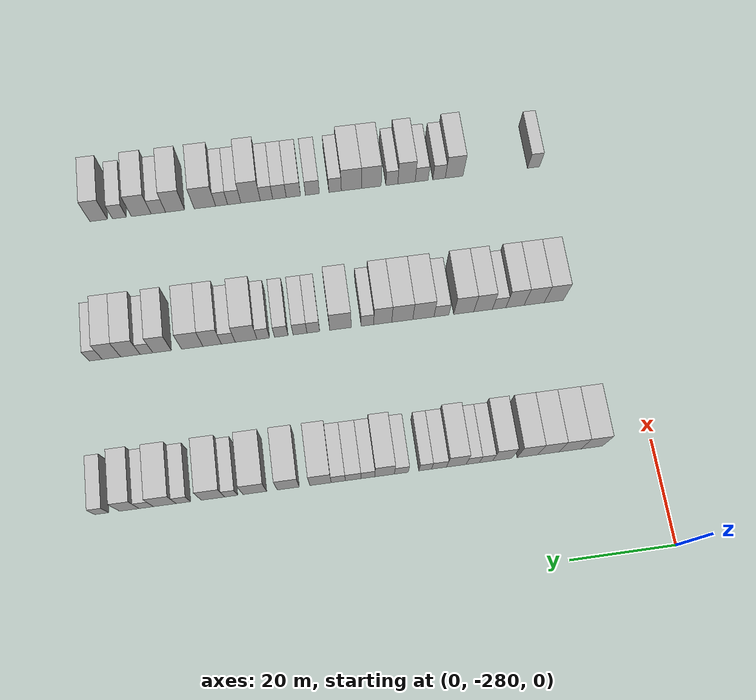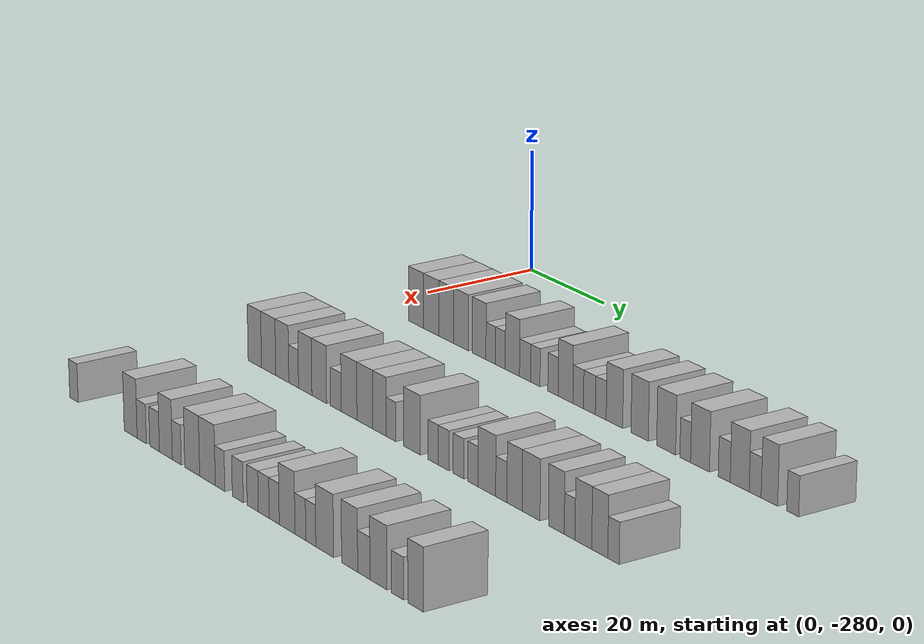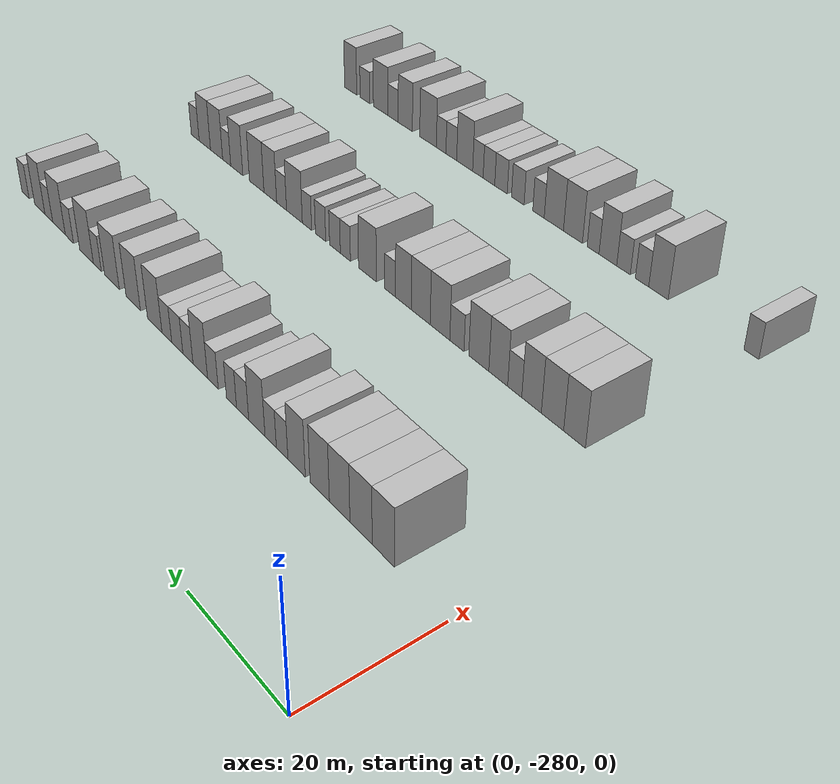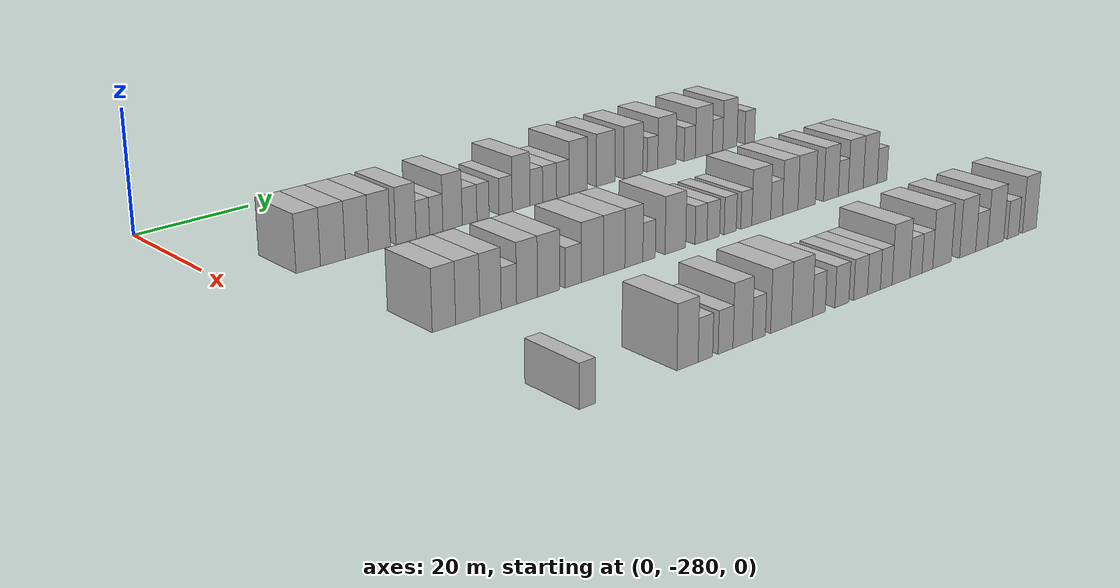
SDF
<sdf version="1.6">
 <world name="default">
  <model name="building_49">
   <static>1</static>
   <pose>25.0000 -268.4264 0 0.000000 0.000000 0.000000</pose>
   <link name="link">
    <pose>0 0 4.50 0 0 0</pose>
    <collision name="collision"><geometry><box><size>10.0000 4.1575 9.0000</size></box></geometry></collision>
    <visual name="visual">
     <cast_shadows>0</cast_shadows>
     <geometry><box><size>10.0000 4.1575 9.0000</size></box></geometry>
     <material>
      <script>
       <uri>model://HANNAS_wall/materials/scripts</uri>
       <uri>model://HANNAS_wall/materials/textures</uri>
       <name>vrc/HANNAS_wall</name>
      </script>
     </material>
    </visual>
   </link>
  </model>
  <model name="building_50">
   <static>1</static>
   <pose>25.0000 -264.1976 0 0.000000 0.000000 0.000000</pose>
   <link name="link">
    <pose>0 0 4.50 0 0 0</pose>
    <collision name="collision"><geometry><box><size>10.0000 4.3001 9.0000</size></box></geometry></collision>
    <visual name="visual">
     <cast_shadows>0</cast_shadows>
     <geometry><box><size>10.0000 4.3001 9.0000</size></box></geometry>
     <material>
      <script>
       <uri>model://HANNAS_wall/materials/scripts</uri>
       <uri>model://HANNAS_wall/materials/textures</uri>
       <name>vrc/HANNAS_wall</name>
      </script>
     </material>
    </visual>
   </link>
  </model>
  <model name="building_51">
   <static>1</static>
   <pose>25.0000 -259.9924 0 0.000000 0.000000 0.000000</pose>
   <link name="link">
    <pose>0 0 4.50 0 0 0</pose>
    <collision name="collision"><geometry><box><size>10.0000 4.1102 9.0000</size></box></geometry></collision>
    <visual name="visual">
     <cast_shadows>0</cast_shadows>
     <geometry><box><size>10.0000 4.1102 9.0000</size></box></geometry>
     <material>
      <script>
       <uri>model://HANNAS_wall/materials/scripts</uri>
       <uri>model://HANNAS_wall/materials/textures</uri>
       <name>vrc/HANNAS_wall</name>
      </script>
     </material>
    </visual>
   </link>
  </model>
  <model name="building_52">
   <static>1</static>
   <pose>25.0000 -255.9386 0 0.000000 0.000000 0.000000</pose>
   <link name="link">
    <pose>0 0 4.50 0 0 0</pose>
    <collision name="collision"><geometry><box><size>10.0000 3.9975 9.0000</size></box></geometry></collision>
    <visual name="visual">
     <cast_shadows>0</cast_shadows>
     <geometry><box><size>10.0000 3.9975 9.0000</size></box></geometry>
     <material>
      <script>
       <uri>model://HANNAS_wall/materials/scripts</uri>
       <uri>model://HANNAS_wall/materials/textures</uri>
       <name>vrc/HANNAS_wall</name>
      </script>
     </material>
    </visual>
   </link>
  </model>
  <model name="building_53">
   <static>1</static>
   <pose>25.0000 -251.0679 0 0.000000 0.000000 0.000000</pose>
   <link name="link">
    <pose>0 0 4.50 0 0 0</pose>
    <collision name="collision"><geometry><box><size>10.0000 3.7440 9.0000</size></box></geometry></collision>
    <visual name="visual">
     <cast_shadows>0</cast_shadows>
     <geometry><box><size>10.0000 3.7440 9.0000</size></box></geometry>
     <material>
      <script>
       <uri>model://HANNAS_wall/materials/scripts</uri>
       <uri>model://HANNAS_wall/materials/textures</uri>
       <name>vrc/HANNAS_wall</name>
      </script>
     </material>
    </visual>
   </link>
  </model>
  <model name="building_54">
   <static>1</static>
   <pose>25.0000 -247.9221 0 0.000000 0.000000 0.000000</pose>
   <link name="link">
    <pose>0 0 3.00 0 0 0</pose>
    <collision name="collision"><geometry><box><size>10.0000 2.5476 6.0000</size></box></geometry></collision>
    <visual name="visual">
     <cast_shadows>0</cast_shadows>
     <geometry><box><size>10.0000 2.5476 6.0000</size></box></geometry>
     <material>
      <script>
       <uri>model://HANNAS_wall/materials/scripts</uri>
       <uri>model://HANNAS_wall/materials/textures</uri>
       <name>vrc/HANNAS_wall</name>
      </script>
     </material>
    </visual>
   </link>
  </model>
  <model name="building_55">
   <static>1</static>
   <pose>25.0000 -245.3750 0 0.000000 0.000000 0.000000</pose>
   <link name="link">
    <pose>0 0 3.00 0 0 0</pose>
    <collision name="collision"><geometry><box><size>10.0000 2.5466 6.0000</size></box></geometry></collision>
    <visual name="visual">
     <cast_shadows>0</cast_shadows>
     <geometry><box><size>10.0000 2.5466 6.0000</size></box></geometry>
     <material>
      <script>
       <uri>model://HANNAS_wall/materials/scripts</uri>
       <uri>model://HANNAS_wall/materials/textures</uri>
       <name>vrc/HANNAS_wall</name>
      </script>
     </material>
    </visual>
   </link>
  </model>
  <model name="building_56">
   <static>1</static>
   <pose>25.0000 -242.2231 0 0.000000 0.000000 0.000000</pose>
   <link name="link">
    <pose>0 0 4.50 0 0 0</pose>
    <collision name="collision"><geometry><box><size>10.0000 3.7574 9.0000</size></box></geometry></collision>
    <visual name="visual">
     <cast_shadows>0</cast_shadows>
     <geometry><box><size>10.0000 3.7574 9.0000</size></box></geometry>
     <material>
      <script>
       <uri>model://HANNAS_wall/materials/scripts</uri>
       <uri>model://HANNAS_wall/materials/textures</uri>
       <name>vrc/HANNAS_wall</name>
      </script>
     </material>
    </visual>
   </link>
  </model>
  <model name="building_57">
   <static>1</static>
   <pose>25.0000 -238.9059 0 0.000000 0.000000 0.000000</pose>
   <link name="link">
    <pose>0 0 3.00 0 0 0</pose>
    <collision name="collision"><geometry><box><size>10.0000 2.8770 6.0000</size></box></geometry></collision>
    <visual name="visual">
     <cast_shadows>0</cast_shadows>
     <geometry><box><size>10.0000 2.8770 6.0000</size></box></geometry>
     <material>
      <script>
       <uri>model://HANNAS_wall/materials/scripts</uri>
       <uri>model://HANNAS_wall/materials/textures</uri>
       <name>vrc/HANNAS_wall</name>
      </script>
     </material>
    </visual>
   </link>
  </model>
  <model name="building_58">
   <static>1</static>
   <pose>25.0000 -236.2493 0 0.000000 0.000000 0.000000</pose>
   <link name="link">
    <pose>0 0 3.00 0 0 0</pose>
    <collision name="collision"><geometry><box><size>10.0000 2.4362 6.0000</size></box></geometry></collision>
    <visual name="visual">
     <cast_shadows>0</cast_shadows>
     <geometry><box><size>10.0000 2.4362 6.0000</size></box></geometry>
     <material>
      <script>
       <uri>model://HANNAS_wall/materials/scripts</uri>
       <uri>model://HANNAS_wall/materials/textures</uri>
       <name>vrc/HANNAS_wall</name>
      </script>
     </material>
    </visual>
   </link>
  </model>
  <model name="building_59">
   <static>1</static>
   <pose>25.0000 -231.7002 0 0.000000 0.000000 0.000000</pose>
   <link name="link">
    <pose>0 0 3.00 0 0 0</pose>
    <collision name="collision"><geometry><box><size>10.0000 2.6620 6.0000</size></box></geometry></collision>
    <visual name="visual">
     <cast_shadows>0</cast_shadows>
     <geometry><box><size>10.0000 2.6620 6.0000</size></box></geometry>
     <material>
      <script>
       <uri>model://HANNAS_wall/materials/scripts</uri>
       <uri>model://HANNAS_wall/materials/textures</uri>
       <name>vrc/HANNAS_wall</name>
      </script>
     </material>
    </visual>
   </link>
  </model>
  <model name="building_60">
   <static>1</static>
   <pose>25.0000 -228.5097 0 0.000000 0.000000 0.000000</pose>
   <link name="link">
    <pose>0 0 4.50 0 0 0</pose>
    <collision name="collision"><geometry><box><size>10.0000 3.7189 9.0000</size></box></geometry></collision>
    <visual name="visual">
     <cast_shadows>0</cast_shadows>
     <geometry><box><size>10.0000 3.7189 9.0000</size></box></geometry>
     <material>
      <script>
       <uri>model://HANNAS_wall/materials/scripts</uri>
       <uri>model://HANNAS_wall/materials/textures</uri>
       <name>vrc/HANNAS_wall</name>
      </script>
     </material>
    </visual>
   </link>
  </model>
  <model name="building_61">
   <static>1</static>
   <pose>25.0000 -225.3300 0 0.000000 0.000000 0.000000</pose>
   <link name="link">
    <pose>0 0 3.00 0 0 0</pose>
    <collision name="collision"><geometry><box><size>10.0000 2.6406 6.0000</size></box></geometry></collision>
    <visual name="visual">
     <cast_shadows>0</cast_shadows>
     <geometry><box><size>10.0000 2.6406 6.0000</size></box></geometry>
     <material>
      <script>
       <uri>model://HANNAS_wall/materials/scripts</uri>
       <uri>model://HANNAS_wall/materials/textures</uri>
       <name>vrc/HANNAS_wall</name>
      </script>
     </material>
    </visual>
   </link>
  </model>
  <model name="building_62">
   <static>1</static>
   <pose>25.0000 -222.5262 0 0.000000 0.000000 0.000000</pose>
   <link name="link">
    <pose>0 0 3.00 0 0 0</pose>
    <collision name="collision"><geometry><box><size>10.0000 2.9670 6.0000</size></box></geometry></collision>
    <visual name="visual">
     <cast_shadows>0</cast_shadows>
     <geometry><box><size>10.0000 2.9670 6.0000</size></box></geometry>
     <material>
      <script>
       <uri>model://HANNAS_wall/materials/scripts</uri>
       <uri>model://HANNAS_wall/materials/textures</uri>
       <name>vrc/HANNAS_wall</name>
      </script>
     </material>
    </visual>
   </link>
  </model>
  <model name="building_63">
   <static>1</static>
   <pose>25.0000 -219.7093 0 0.000000 0.000000 0.000000</pose>
   <link name="link">
    <pose>0 0 3.00 0 0 0</pose>
    <collision name="collision"><geometry><box><size>10.0000 2.6669 6.0000</size></box></geometry></collision>
    <visual name="visual">
     <cast_shadows>0</cast_shadows>
     <geometry><box><size>10.0000 2.6669 6.0000</size></box></geometry>
     <material>
      <script>
       <uri>model://HANNAS_wall/materials/scripts</uri>
       <uri>model://HANNAS_wall/materials/textures</uri>
       <name>vrc/HANNAS_wall</name>
      </script>
     </material>
    </visual>
   </link>
  </model>
  <model name="building_64">
   <static>1</static>
   <pose>25.0000 -216.3573 0 0.000000 0.000000 0.000000</pose>
   <link name="link">
    <pose>0 0 4.50 0 0 0</pose>
    <collision name="collision"><geometry><box><size>10.0000 4.0371 9.0000</size></box></geometry></collision>
    <visual name="visual">
     <cast_shadows>0</cast_shadows>
     <geometry><box><size>10.0000 4.0371 9.0000</size></box></geometry>
     <material>
      <script>
       <uri>model://HANNAS_wall/materials/scripts</uri>
       <uri>model://HANNAS_wall/materials/textures</uri>
       <name>vrc/HANNAS_wall</name>
      </script>
     </material>
    </visual>
   </link>
  </model>
  <model name="building_65">
   <static>1</static>
   <pose>25.0000 -210.2549 0 0.000000 0.000000 0.000000</pose>
   <link name="link">
    <pose>0 0 4.50 0 0 0</pose>
    <collision name="collision"><geometry><box><size>10.0000 4.1677 9.0000</size></box></geometry></collision>
    <visual name="visual">
     <cast_shadows>0</cast_shadows>
     <geometry><box><size>10.0000 4.1677 9.0000</size></box></geometry>
     <material>
      <script>
       <uri>model://HANNAS_wall/materials/scripts</uri>
       <uri>model://HANNAS_wall/materials/textures</uri>
       <name>vrc/HANNAS_wall</name>
      </script>
     </material>
    </visual>
   </link>
  </model>
  <model name="building_66">
   <static>1</static>
   <pose>25.0000 -203.9430 0 0.000000 0.000000 0.000000</pose>
   <link name="link">
    <pose>0 0 4.50 0 0 0</pose>
    <collision name="collision"><geometry><box><size>10.0000 4.4560 9.0000</size></box></geometry></collision>
    <visual name="visual">
     <cast_shadows>0</cast_shadows>
     <geometry><box><size>10.0000 4.4560 9.0000</size></box></geometry>
     <material>
      <script>
       <uri>model://HANNAS_wall/materials/scripts</uri>
       <uri>model://HANNAS_wall/materials/textures</uri>
       <name>vrc/HANNAS_wall</name>
      </script>
     </material>
    </visual>
   </link>
  </model>
  <model name="building_67">
   <static>1</static>
   <pose>25.0000 -199.4689 0 0.000000 0.000000 0.000000</pose>
   <link name="link">
    <pose>0 0 3.00 0 0 0</pose>
    <collision name="collision"><geometry><box><size>10.0000 2.4922 6.0000</size></box></geometry></collision>
    <visual name="visual">
     <cast_shadows>0</cast_shadows>
     <geometry><box><size>10.0000 2.4922 6.0000</size></box></geometry>
     <material>
      <script>
       <uri>model://HANNAS_wall/materials/scripts</uri>
       <uri>model://HANNAS_wall/materials/textures</uri>
       <name>vrc/HANNAS_wall</name>
      </script>
     </material>
    </visual>
   </link>
  </model>
  <model name="building_68">
   <static>1</static>
   <pose>25.0000 -196.0397 0 0.000000 0.000000 0.000000</pose>
   <link name="link">
    <pose>0 0 4.50 0 0 0</pose>
    <collision name="collision"><geometry><box><size>10.0000 4.3663 9.0000</size></box></geometry></collision>
    <visual name="visual">
     <cast_shadows>0</cast_shadows>
     <geometry><box><size>10.0000 4.3663 9.0000</size></box></geometry>
     <material>
      <script>
       <uri>model://HANNAS_wall/materials/scripts</uri>
       <uri>model://HANNAS_wall/materials/textures</uri>
       <name>vrc/HANNAS_wall</name>
      </script>
     </material>
    </visual>
   </link>
  </model>
  <model name="building_69">
   <static>1</static>
   <pose>25.0000 -190.4998 0 0.000000 0.000000 0.000000</pose>
   <link name="link">
    <pose>0 0 3.00 0 0 0</pose>
    <collision name="collision"><geometry><box><size>10.0000 2.7136 6.0000</size></box></geometry></collision>
    <visual name="visual">
     <cast_shadows>0</cast_shadows>
     <geometry><box><size>10.0000 2.7136 6.0000</size></box></geometry>
     <material>
      <script>
       <uri>model://HANNAS_wall/materials/scripts</uri>
       <uri>model://HANNAS_wall/materials/textures</uri>
       <name>vrc/HANNAS_wall</name>
      </script>
     </material>
    </visual>
   </link>
  </model>
  <model name="building_70">
   <static>1</static>
   <pose>25.0000 -187.0167 0 0.000000 0.000000 0.000000</pose>
   <link name="link">
    <pose>0 0 4.50 0 0 0</pose>
    <collision name="collision"><geometry><box><size>10.0000 4.2525 9.0000</size></box></geometry></collision>
    <visual name="visual">
     <cast_shadows>0</cast_shadows>
     <geometry><box><size>10.0000 4.2525 9.0000</size></box></geometry>
     <material>
      <script>
       <uri>model://HANNAS_wall/materials/scripts</uri>
       <uri>model://HANNAS_wall/materials/textures</uri>
       <name>vrc/HANNAS_wall</name>
      </script>
     </material>
    </visual>
   </link>
  </model>
  <model name="building_71">
   <static>1</static>
   <pose>25.0000 -183.5527 0 0.000000 0.000000 0.000000</pose>
   <link name="link">
    <pose>0 0 3.00 0 0 0</pose>
    <collision name="collision"><geometry><box><size>10.0000 2.6756 6.0000</size></box></geometry></collision>
    <visual name="visual">
     <cast_shadows>0</cast_shadows>
     <geometry><box><size>10.0000 2.6756 6.0000</size></box></geometry>
     <material>
      <script>
       <uri>model://HANNAS_wall/materials/scripts</uri>
       <uri>model://HANNAS_wall/materials/textures</uri>
       <name>vrc/HANNAS_wall</name>
      </script>
     </material>
    </visual>
   </link>
  </model>
  <model name="building_72">
   <static>1</static>
   <pose>25.0000 -180.4028 0 0.000000 0.000000 0.000000</pose>
   <link name="link">
    <pose>0 0 4.50 0 0 0</pose>
    <collision name="collision"><geometry><box><size>10.0000 3.6242 9.0000</size></box></geometry></collision>
    <visual name="visual">
     <cast_shadows>0</cast_shadows>
     <geometry><box><size>10.0000 3.6242 9.0000</size></box></geometry>
     <material>
      <script>
       <uri>model://HANNAS_wall/materials/scripts</uri>
       <uri>model://HANNAS_wall/materials/textures</uri>
       <name>vrc/HANNAS_wall</name>
      </script>
     </material>
    </visual>
   </link>
  </model>
  <model name="building_73">
   <static>1</static>
   <pose>25.0000 -175.2914 0 0.000000 0.000000 0.000000</pose>
   <link name="link">
    <pose>0 0 3.00 0 0 0</pose>
    <collision name="collision"><geometry><box><size>10.0000 2.5985 6.0000</size></box></geometry></collision>
    <visual name="visual">
     <cast_shadows>0</cast_shadows>
     <geometry><box><size>10.0000 2.5985 6.0000</size></box></geometry>
     <material>
      <script>
       <uri>model://HANNAS_wall/materials/scripts</uri>
       <uri>model://HANNAS_wall/materials/textures</uri>
       <name>vrc/HANNAS_wall</name>
      </script>
     </material>
    </visual>
   </link>
  </model>
  <model name="building_274">
   <static>1</static>
   <pose>55.0000 -267.0075 0 0.000000 0.000000 0.000000</pose>
   <link name="link">
    <pose>0 0 4.50 0 0 0</pose>
    <collision name="collision"><geometry><box><size>10.0000 3.8883 9.0000</size></box></geometry></collision>
    <visual name="visual">
     <cast_shadows>0</cast_shadows>
     <geometry><box><size>10.0000 3.8883 9.0000</size></box></geometry>
     <material>
      <script>
       <uri>model://HANNAS_wall/materials/scripts</uri>
       <uri>model://HANNAS_wall/materials/textures</uri>
       <name>vrc/HANNAS_wall</name>
      </script>
     </material>
    </visual>
   </link>
  </model>
  <model name="building_275">
   <static>1</static>
   <pose>55.0000 -263.0115 0 0.000000 0.000000 0.000000</pose>
   <link name="link">
    <pose>0 0 4.50 0 0 0</pose>
    <collision name="collision"><geometry><box><size>10.0000 4.1035 9.0000</size></box></geometry></collision>
    <visual name="visual">
     <cast_shadows>0</cast_shadows>
     <geometry><box><size>10.0000 4.1035 9.0000</size></box></geometry>
     <material>
      <script>
       <uri>model://HANNAS_wall/materials/scripts</uri>
       <uri>model://HANNAS_wall/materials/textures</uri>
       <name>vrc/HANNAS_wall</name>
      </script>
     </material>
    </visual>
   </link>
  </model>
  <model name="building_276">
   <static>1</static>
   <pose>55.0000 -259.1069 0 0.000000 0.000000 0.000000</pose>
   <link name="link">
    <pose>0 0 4.50 0 0 0</pose>
    <collision name="collision"><geometry><box><size>10.0000 3.7057 9.0000</size></box></geometry></collision>
    <visual name="visual">
     <cast_shadows>0</cast_shadows>
     <geometry><box><size>10.0000 3.7057 9.0000</size></box></geometry>
     <material>
      <script>
       <uri>model://HANNAS_wall/materials/scripts</uri>
       <uri>model://HANNAS_wall/materials/textures</uri>
       <name>vrc/HANNAS_wall</name>
      </script>
     </material>
    </visual>
   </link>
  </model>
  <model name="building_277">
   <static>1</static>
   <pose>55.0000 -255.8892 0 0.000000 0.000000 0.000000</pose>
   <link name="link">
    <pose>0 0 3.00 0 0 0</pose>
    <collision name="collision"><geometry><box><size>10.0000 2.7297 6.0000</size></box></geometry></collision>
    <visual name="visual">
     <cast_shadows>0</cast_shadows>
     <geometry><box><size>10.0000 2.7297 6.0000</size></box></geometry>
     <material>
      <script>
       <uri>model://HANNAS_wall/materials/scripts</uri>
       <uri>model://HANNAS_wall/materials/textures</uri>
       <name>vrc/HANNAS_wall</name>
      </script>
     </material>
    </visual>
   </link>
  </model>
  <model name="building_278">
   <static>1</static>
   <pose>55.0000 -252.6511 0 0.000000 0.000000 0.000000</pose>
   <link name="link">
    <pose>0 0 4.50 0 0 0</pose>
    <collision name="collision"><geometry><box><size>10.0000 3.7464 9.0000</size></box></geometry></collision>
    <visual name="visual">
     <cast_shadows>0</cast_shadows>
     <geometry><box><size>10.0000 3.7464 9.0000</size></box></geometry>
     <material>
      <script>
       <uri>model://HANNAS_wall/materials/scripts</uri>
       <uri>model://HANNAS_wall/materials/textures</uri>
       <name>vrc/HANNAS_wall</name>
      </script>
     </material>
    </visual>
   </link>
  </model>
  <model name="building_279">
   <static>1</static>
   <pose>55.0000 -248.7338 0 0.000000 0.000000 0.000000</pose>
   <link name="link">
    <pose>0 0 4.50 0 0 0</pose>
    <collision name="collision"><geometry><box><size>10.0000 4.0884 9.0000</size></box></geometry></collision>
    <visual name="visual">
     <cast_shadows>0</cast_shadows>
     <geometry><box><size>10.0000 4.0884 9.0000</size></box></geometry>
     <material>
      <script>
       <uri>model://HANNAS_wall/materials/scripts</uri>
       <uri>model://HANNAS_wall/materials/textures</uri>
       <name>vrc/HANNAS_wall</name>
      </script>
     </material>
    </visual>
   </link>
  </model>
  <model name="building_280">
   <static>1</static>
   <pose>55.0000 -244.1921 0 0.000000 0.000000 0.000000</pose>
   <link name="link">
    <pose>0 0 3.00 0 0 0</pose>
    <collision name="collision"><geometry><box><size>10.0000 2.9949 6.0000</size></box></geometry></collision>
    <visual name="visual">
     <cast_shadows>0</cast_shadows>
     <geometry><box><size>10.0000 2.9949 6.0000</size></box></geometry>
     <material>
      <script>
       <uri>model://HANNAS_wall/materials/scripts</uri>
       <uri>model://HANNAS_wall/materials/textures</uri>
       <name>vrc/HANNAS_wall</name>
      </script>
     </material>
    </visual>
   </link>
  </model>
  <model name="building_281">
   <static>1</static>
   <pose>55.0000 -240.5673 0 0.000000 0.000000 0.000000</pose>
   <link name="link">
    <pose>0 0 4.50 0 0 0</pose>
    <collision name="collision"><geometry><box><size>10.0000 4.2548 9.0000</size></box></geometry></collision>
    <visual name="visual">
     <cast_shadows>0</cast_shadows>
     <geometry><box><size>10.0000 4.2548 9.0000</size></box></geometry>
     <material>
      <script>
       <uri>model://HANNAS_wall/materials/scripts</uri>
       <uri>model://HANNAS_wall/materials/textures</uri>
       <name>vrc/HANNAS_wall</name>
      </script>
     </material>
    </visual>
   </link>
  </model>
  <model name="building_282">
   <static>1</static>
   <pose>55.0000 -236.3284 0 0.000000 0.000000 0.000000</pose>
   <link name="link">
    <pose>0 0 4.50 0 0 0</pose>
    <collision name="collision"><geometry><box><size>10.0000 4.2230 9.0000</size></box></geometry></collision>
    <visual name="visual">
     <cast_shadows>0</cast_shadows>
     <geometry><box><size>10.0000 4.2230 9.0000</size></box></geometry>
     <material>
      <script>
       <uri>model://HANNAS_wall/materials/scripts</uri>
       <uri>model://HANNAS_wall/materials/textures</uri>
       <name>vrc/HANNAS_wall</name>
      </script>
     </material>
    </visual>
   </link>
  </model>
  <model name="building_283">
   <static>1</static>
   <pose>55.0000 -232.4108 0 0.000000 0.000000 0.000000</pose>
   <link name="link">
    <pose>0 0 4.50 0 0 0</pose>
    <collision name="collision"><geometry><box><size>10.0000 3.6121 9.0000</size></box></geometry></collision>
    <visual name="visual">
     <cast_shadows>0</cast_shadows>
     <geometry><box><size>10.0000 3.6121 9.0000</size></box></geometry>
     <material>
      <script>
       <uri>model://HANNAS_wall/materials/scripts</uri>
       <uri>model://HANNAS_wall/materials/textures</uri>
       <name>vrc/HANNAS_wall</name>
      </script>
     </material>
    </visual>
   </link>
  </model>
  <model name="building_284">
   <static>1</static>
   <pose>55.0000 -229.3504 0 0.000000 0.000000 0.000000</pose>
   <link name="link">
    <pose>0 0 3.00 0 0 0</pose>
    <collision name="collision"><geometry><box><size>10.0000 2.5087 6.0000</size></box></geometry></collision>
    <visual name="visual">
     <cast_shadows>0</cast_shadows>
     <geometry><box><size>10.0000 2.5087 6.0000</size></box></geometry>
     <material>
      <script>
       <uri>model://HANNAS_wall/materials/scripts</uri>
       <uri>model://HANNAS_wall/materials/textures</uri>
       <name>vrc/HANNAS_wall</name>
      </script>
     </material>
    </visual>
   </link>
  </model>
  <model name="building_285">
   <static>1</static>
   <pose>55.0000 -223.9430 0 0.000000 0.000000 0.000000</pose>
   <link name="link">
    <pose>0 0 4.50 0 0 0</pose>
    <collision name="collision"><geometry><box><size>10.0000 4.3061 9.0000</size></box></geometry></collision>
    <visual name="visual">
     <cast_shadows>0</cast_shadows>
     <geometry><box><size>10.0000 4.3061 9.0000</size></box></geometry>
     <material>
      <script>
       <uri>model://HANNAS_wall/materials/scripts</uri>
       <uri>model://HANNAS_wall/materials/textures</uri>
       <name>vrc/HANNAS_wall</name>
      </script>
     </material>
    </visual>
   </link>
  </model>
  <model name="building_286">
   <static>1</static>
   <pose>55.0000 -218.5213 0 0.000000 0.000000 0.000000</pose>
   <link name="link">
    <pose>0 0 3.00 0 0 0</pose>
    <collision name="collision"><geometry><box><size>10.0000 2.5373 6.0000</size></box></geometry></collision>
    <visual name="visual">
     <cast_shadows>0</cast_shadows>
     <geometry><box><size>10.0000 2.5373 6.0000</size></box></geometry>
     <material>
      <script>
       <uri>model://HANNAS_wall/materials/scripts</uri>
       <uri>model://HANNAS_wall/materials/textures</uri>
       <name>vrc/HANNAS_wall</name>
      </script>
     </material>
    </visual>
   </link>
  </model>
  <model name="building_287">
   <static>1</static>
   <pose>55.0000 -215.8755 0 0.000000 0.000000 0.000000</pose>
   <link name="link">
    <pose>0 0 3.00 0 0 0</pose>
    <collision name="collision"><geometry><box><size>10.0000 2.7541 6.0000</size></box></geometry></collision>
    <visual name="visual">
     <cast_shadows>0</cast_shadows>
     <geometry><box><size>10.0000 2.7541 6.0000</size></box></geometry>
     <material>
      <script>
       <uri>model://HANNAS_wall/materials/scripts</uri>
       <uri>model://HANNAS_wall/materials/textures</uri>
       <name>vrc/HANNAS_wall</name>
      </script>
     </material>
    </visual>
   </link>
  </model>
  <model name="building_288">
   <static>1</static>
   <pose>55.0000 -212.1551 0 0.000000 0.000000 0.000000</pose>
   <link name="link">
    <pose>0 0 3.00 0 0 0</pose>
    <collision name="collision"><geometry><box><size>10.0000 2.6868 6.0000</size></box></geometry></collision>
    <visual name="visual">
     <cast_shadows>0</cast_shadows>
     <geometry><box><size>10.0000 2.6868 6.0000</size></box></geometry>
     <material>
      <script>
       <uri>model://HANNAS_wall/materials/scripts</uri>
       <uri>model://HANNAS_wall/materials/textures</uri>
       <name>vrc/HANNAS_wall</name>
      </script>
     </material>
    </visual>
   </link>
  </model>
  <model name="building_289">
   <static>1</static>
   <pose>55.0000 -208.5669 0 0.000000 0.000000 0.000000</pose>
   <link name="link">
    <pose>0 0 3.00 0 0 0</pose>
    <collision name="collision"><geometry><box><size>10.0000 2.4895 6.0000</size></box></geometry></collision>
    <visual name="visual">
     <cast_shadows>0</cast_shadows>
     <geometry><box><size>10.0000 2.4895 6.0000</size></box></geometry>
     <material>
      <script>
       <uri>model://HANNAS_wall/materials/scripts</uri>
       <uri>model://HANNAS_wall/materials/textures</uri>
       <name>vrc/HANNAS_wall</name>
      </script>
     </material>
    </visual>
   </link>
  </model>
  <model name="building_290">
   <static>1</static>
   <pose>55.0000 -205.1595 0 0.000000 0.000000 0.000000</pose>
   <link name="link">
    <pose>0 0 4.50 0 0 0</pose>
    <collision name="collision"><geometry><box><size>10.0000 4.3253 9.0000</size></box></geometry></collision>
    <visual name="visual">
     <cast_shadows>0</cast_shadows>
     <geometry><box><size>10.0000 4.3253 9.0000</size></box></geometry>
     <material>
      <script>
       <uri>model://HANNAS_wall/materials/scripts</uri>
       <uri>model://HANNAS_wall/materials/textures</uri>
       <name>vrc/HANNAS_wall</name>
      </script>
     </material>
    </visual>
   </link>
  </model>
  <model name="building_291">
   <static>1</static>
   <pose>55.0000 -201.6149 0 0.000000 0.000000 0.000000</pose>
   <link name="link">
    <pose>0 0 3.00 0 0 0</pose>
    <collision name="collision"><geometry><box><size>10.0000 2.7639 6.0000</size></box></geometry></collision>
    <visual name="visual">
     <cast_shadows>0</cast_shadows>
     <geometry><box><size>10.0000 2.7639 6.0000</size></box></geometry>
     <material>
      <script>
       <uri>model://HANNAS_wall/materials/scripts</uri>
       <uri>model://HANNAS_wall/materials/textures</uri>
       <name>vrc/HANNAS_wall</name>
      </script>
     </material>
    </visual>
   </link>
  </model>
  <model name="building_292">
   <static>1</static>
   <pose>55.0000 -198.4248 0 0.000000 0.000000 0.000000</pose>
   <link name="link">
    <pose>0 0 4.50 0 0 0</pose>
    <collision name="collision"><geometry><box><size>10.0000 3.6163 9.0000</size></box></geometry></collision>
    <visual name="visual">
     <cast_shadows>0</cast_shadows>
     <geometry><box><size>10.0000 3.6163 9.0000</size></box></geometry>
     <material>
      <script>
       <uri>model://HANNAS_wall/materials/scripts</uri>
       <uri>model://HANNAS_wall/materials/textures</uri>
       <name>vrc/HANNAS_wall</name>
      </script>
     </material>
    </visual>
   </link>
  </model>
  <model name="building_293">
   <static>1</static>
   <pose>55.0000 -194.5059 0 0.000000 0.000000 0.000000</pose>
   <link name="link">
    <pose>0 0 4.50 0 0 0</pose>
    <collision name="collision"><geometry><box><size>10.0000 4.2215 9.0000</size></box></geometry></collision>
    <visual name="visual">
     <cast_shadows>0</cast_shadows>
     <geometry><box><size>10.0000 4.2215 9.0000</size></box></geometry>
     <material>
      <script>
       <uri>model://HANNAS_wall/materials/scripts</uri>
       <uri>model://HANNAS_wall/materials/textures</uri>
       <name>vrc/HANNAS_wall</name>
      </script>
     </material>
    </visual>
   </link>
  </model>
  <model name="building_294">
   <static>1</static>
   <pose>55.0000 -188.5686 0 0.000000 0.000000 0.000000</pose>
   <link name="link">
    <pose>0 0 4.50 0 0 0</pose>
    <collision name="collision"><geometry><box><size>10.0000 3.6532 9.0000</size></box></geometry></collision>
    <visual name="visual">
     <cast_shadows>0</cast_shadows>
     <geometry><box><size>10.0000 3.6532 9.0000</size></box></geometry>
     <material>
      <script>
       <uri>model://HANNAS_wall/materials/scripts</uri>
       <uri>model://HANNAS_wall/materials/textures</uri>
       <name>vrc/HANNAS_wall</name>
      </script>
     </material>
    </visual>
   </link>
  </model>
  <model name="building_295">
   <static>1</static>
   <pose>55.0000 -185.4997 0 0.000000 0.000000 0.000000</pose>
   <link name="link">
    <pose>0 0 3.00 0 0 0</pose>
    <collision name="collision"><geometry><box><size>10.0000 2.4845 6.0000</size></box></geometry></collision>
    <visual name="visual">
     <cast_shadows>0</cast_shadows>
     <geometry><box><size>10.0000 2.4845 6.0000</size></box></geometry>
     <material>
      <script>
       <uri>model://HANNAS_wall/materials/scripts</uri>
       <uri>model://HANNAS_wall/materials/textures</uri>
       <name>vrc/HANNAS_wall</name>
      </script>
     </material>
    </visual>
   </link>
  </model>
  <model name="building_296">
   <static>1</static>
   <pose>55.0000 -182.3467 0 0.000000 0.000000 0.000000</pose>
   <link name="link">
    <pose>0 0 4.50 0 0 0</pose>
    <collision name="collision"><geometry><box><size>10.0000 3.8214 9.0000</size></box></geometry></collision>
    <visual name="visual">
     <cast_shadows>0</cast_shadows>
     <geometry><box><size>10.0000 3.8214 9.0000</size></box></geometry>
     <material>
      <script>
       <uri>model://HANNAS_wall/materials/scripts</uri>
       <uri>model://HANNAS_wall/materials/textures</uri>
       <name>vrc/HANNAS_wall</name>
      </script>
     </material>
    </visual>
   </link>
  </model>
  <model name="building_297">
   <static>1</static>
   <pose>55.0000 -178.6229 0 0.000000 0.000000 0.000000</pose>
   <link name="link">
    <pose>0 0 4.50 0 0 0</pose>
    <collision name="collision"><geometry><box><size>10.0000 3.6263 9.0000</size></box></geometry></collision>
    <visual name="visual">
     <cast_shadows>0</cast_shadows>
     <geometry><box><size>10.0000 3.6263 9.0000</size></box></geometry>
     <material>
      <script>
       <uri>model://HANNAS_wall/materials/scripts</uri>
       <uri>model://HANNAS_wall/materials/textures</uri>
       <name>vrc/HANNAS_wall</name>
      </script>
     </material>
    </visual>
   </link>
  </model>
  <model name="building_298">
   <static>1</static>
   <pose>55.0000 -175.5332 0 0.000000 0.000000 0.000000</pose>
   <link name="link">
    <pose>0 0 3.00 0 0 0</pose>
    <collision name="collision"><geometry><box><size>10.0000 2.5531 6.0000</size></box></geometry></collision>
    <visual name="visual">
     <cast_shadows>0</cast_shadows>
     <geometry><box><size>10.0000 2.5531 6.0000</size></box></geometry>
     <material>
      <script>
       <uri>model://HANNAS_wall/materials/scripts</uri>
       <uri>model://HANNAS_wall/materials/textures</uri>
       <name>vrc/HANNAS_wall</name>
      </script>
     </material>
    </visual>
   </link>
  </model>
  <model name="building_509">
   <static>1</static>
   <pose>85.0000 -268.6690 0 0.000000 0.000000 0.000000</pose>
   <link name="link">
    <pose>0 0 3.00 0 0 0</pose>
    <collision name="collision"><geometry><box><size>10.0000 2.5684 6.0000</size></box></geometry></collision>
    <visual name="visual">
     <cast_shadows>0</cast_shadows>
     <geometry><box><size>10.0000 2.5684 6.0000</size></box></geometry>
     <material>
      <script>
       <uri>model://HANNAS_wall/materials/scripts</uri>
       <uri>model://HANNAS_wall/materials/textures</uri>
       <name>vrc/HANNAS_wall</name>
      </script>
     </material>
    </visual>
   </link>
  </model>
  <model name="building_510">
   <static>1</static>
   <pose>85.0000 -251.7376 0 0.000000 0.000000 0.000000</pose>
   <link name="link">
    <pose>0 0 4.50 0 0 0</pose>
    <collision name="collision"><geometry><box><size>10.0000 3.7648 9.0000</size></box></geometry></collision>
    <visual name="visual">
     <cast_shadows>0</cast_shadows>
     <geometry><box><size>10.0000 3.7648 9.0000</size></box></geometry>
     <material>
      <script>
       <uri>model://HANNAS_wall/materials/scripts</uri>
       <uri>model://HANNAS_wall/materials/textures</uri>
       <name>vrc/HANNAS_wall</name>
      </script>
     </material>
    </visual>
   </link>
  </model>
  <model name="building_511">
   <static>1</static>
   <pose>85.0000 -248.5397 0 0.000000 0.000000 0.000000</pose>
   <link name="link">
    <pose>0 0 3.00 0 0 0</pose>
    <collision name="collision"><geometry><box><size>10.0000 2.6311 6.0000</size></box></geometry></collision>
    <visual name="visual">
     <cast_shadows>0</cast_shadows>
     <geometry><box><size>10.0000 2.6311 6.0000</size></box></geometry>
     <material>
      <script>
       <uri>model://HANNAS_wall/materials/scripts</uri>
       <uri>model://HANNAS_wall/materials/textures</uri>
       <name>vrc/HANNAS_wall</name>
      </script>
     </material>
    </visual>
   </link>
  </model>
  <model name="building_512">
   <static>1</static>
   <pose>85.0000 -244.8506 0 0.000000 0.000000 0.000000</pose>
   <link name="link">
    <pose>0 0 3.00 0 0 0</pose>
    <collision name="collision"><geometry><box><size>10.0000 2.7470 6.0000</size></box></geometry></collision>
    <visual name="visual">
     <cast_shadows>0</cast_shadows>
     <geometry><box><size>10.0000 2.7470 6.0000</size></box></geometry>
     <material>
      <script>
       <uri>model://HANNAS_wall/materials/scripts</uri>
       <uri>model://HANNAS_wall/materials/textures</uri>
       <name>vrc/HANNAS_wall</name>
      </script>
     </material>
    </visual>
   </link>
  </model>
  <model name="building_513">
   <static>1</static>
   <pose>85.0000 -241.6484 0 0.000000 0.000000 0.000000</pose>
   <link name="link">
    <pose>0 0 4.50 0 0 0</pose>
    <collision name="collision"><geometry><box><size>10.0000 3.6575 9.0000</size></box></geometry></collision>
    <visual name="visual">
     <cast_shadows>0</cast_shadows>
     <geometry><box><size>10.0000 3.6575 9.0000</size></box></geometry>
     <material>
      <script>
       <uri>model://HANNAS_wall/materials/scripts</uri>
       <uri>model://HANNAS_wall/materials/textures</uri>
       <name>vrc/HANNAS_wall</name>
      </script>
     </material>
    </visual>
   </link>
  </model>
  <model name="building_514">
   <static>1</static>
   <pose>85.0000 -238.5679 0 0.000000 0.000000 0.000000</pose>
   <link name="link">
    <pose>0 0 3.00 0 0 0</pose>
    <collision name="collision"><geometry><box><size>10.0000 2.5034 6.0000</size></box></geometry></collision>
    <visual name="visual">
     <cast_shadows>0</cast_shadows>
     <geometry><box><size>10.0000 2.5034 6.0000</size></box></geometry>
     <material>
      <script>
       <uri>model://HANNAS_wall/materials/scripts</uri>
       <uri>model://HANNAS_wall/materials/textures</uri>
       <name>vrc/HANNAS_wall</name>
      </script>
     </material>
    </visual>
   </link>
  </model>
  <model name="building_515">
   <static>1</static>
   <pose>85.0000 -234.2623 0 0.000000 0.000000 0.000000</pose>
   <link name="link">
    <pose>0 0 4.50 0 0 0</pose>
    <collision name="collision"><geometry><box><size>10.0000 4.1079 9.0000</size></box></geometry></collision>
    <visual name="visual">
     <cast_shadows>0</cast_shadows>
     <geometry><box><size>10.0000 4.1079 9.0000</size></box></geometry>
     <material>
      <script>
       <uri>model://HANNAS_wall/materials/scripts</uri>
       <uri>model://HANNAS_wall/materials/textures</uri>
       <name>vrc/HANNAS_wall</name>
      </script>
     </material>
    </visual>
   </link>
  </model>
  <model name="building_516">
   <static>1</static>
   <pose>85.0000 -230.0715 0 0.000000 0.000000 0.000000</pose>
   <link name="link">
    <pose>0 0 4.50 0 0 0</pose>
    <collision name="collision"><geometry><box><size>10.0000 4.2737 9.0000</size></box></geometry></collision>
    <visual name="visual">
     <cast_shadows>0</cast_shadows>
     <geometry><box><size>10.0000 4.2737 9.0000</size></box></geometry>
     <material>
      <script>
       <uri>model://HANNAS_wall/materials/scripts</uri>
       <uri>model://HANNAS_wall/materials/textures</uri>
       <name>vrc/HANNAS_wall</name>
      </script>
     </material>
    </visual>
   </link>
  </model>
  <model name="building_517">
   <static>1</static>
   <pose>85.0000 -226.6334 0 0.000000 0.000000 0.000000</pose>
   <link name="link">
    <pose>0 0 3.00 0 0 0</pose>
    <collision name="collision"><geometry><box><size>10.0000 2.6025 6.0000</size></box></geometry></collision>
    <visual name="visual">
     <cast_shadows>0</cast_shadows>
     <geometry><box><size>10.0000 2.6025 6.0000</size></box></geometry>
     <material>
      <script>
       <uri>model://HANNAS_wall/materials/scripts</uri>
       <uri>model://HANNAS_wall/materials/textures</uri>
       <name>vrc/HANNAS_wall</name>
      </script>
     </material>
    </visual>
   </link>
  </model>
  <model name="building_518">
   <static>1</static>
   <pose>85.0000 -221.8596 0 0.000000 0.000000 0.000000</pose>
   <link name="link">
    <pose>0 0 3.00 0 0 0</pose>
    <collision name="collision"><geometry><box><size>10.0000 2.9452 6.0000</size></box></geometry></collision>
    <visual name="visual">
     <cast_shadows>0</cast_shadows>
     <geometry><box><size>10.0000 2.9452 6.0000</size></box></geometry>
     <material>
      <script>
       <uri>model://HANNAS_wall/materials/scripts</uri>
       <uri>model://HANNAS_wall/materials/textures</uri>
       <name>vrc/HANNAS_wall</name>
      </script>
     </material>
    </visual>
   </link>
  </model>
  <model name="building_519">
   <static>1</static>
   <pose>85.0000 -217.8915 0 0.000000 0.000000 0.000000</pose>
   <link name="link">
    <pose>0 0 3.00 0 0 0</pose>
    <collision name="collision"><geometry><box><size>10.0000 2.9909 6.0000</size></box></geometry></collision>
    <visual name="visual">
     <cast_shadows>0</cast_shadows>
     <geometry><box><size>10.0000 2.9909 6.0000</size></box></geometry>
     <material>
      <script>
       <uri>model://HANNAS_wall/materials/scripts</uri>
       <uri>model://HANNAS_wall/materials/textures</uri>
       <name>vrc/HANNAS_wall</name>
      </script>
     </material>
    </visual>
   </link>
  </model>
  <model name="building_520">
   <static>1</static>
   <pose>85.0000 -214.9811 0 0.000000 0.000000 0.000000</pose>
   <link name="link">
    <pose>0 0 3.00 0 0 0</pose>
    <collision name="collision"><geometry><box><size>10.0000 2.8299 6.0000</size></box></geometry></collision>
    <visual name="visual">
     <cast_shadows>0</cast_shadows>
     <geometry><box><size>10.0000 2.8299 6.0000</size></box></geometry>
     <material>
      <script>
       <uri>model://HANNAS_wall/materials/scripts</uri>
       <uri>model://HANNAS_wall/materials/textures</uri>
       <name>vrc/HANNAS_wall</name>
      </script>
     </material>
    </visual>
   </link>
  </model>
  <model name="building_521">
   <static>1</static>
   <pose>85.0000 -212.2720 0 0.000000 0.000000 0.000000</pose>
   <link name="link">
    <pose>0 0 3.00 0 0 0</pose>
    <collision name="collision"><geometry><box><size>10.0000 2.5883 6.0000</size></box></geometry></collision>
    <visual name="visual">
     <cast_shadows>0</cast_shadows>
     <geometry><box><size>10.0000 2.5883 6.0000</size></box></geometry>
     <material>
      <script>
       <uri>model://HANNAS_wall/materials/scripts</uri>
       <uri>model://HANNAS_wall/materials/textures</uri>
       <name>vrc/HANNAS_wall</name>
      </script>
     </material>
    </visual>
   </link>
  </model>
  <model name="building_522">
   <static>1</static>
   <pose>85.0000 -208.9543 0 0.000000 0.000000 0.000000</pose>
   <link name="link">
    <pose>0 0 4.50 0 0 0</pose>
    <collision name="collision"><geometry><box><size>10.0000 4.0470 9.0000</size></box></geometry></collision>
    <visual name="visual">
     <cast_shadows>0</cast_shadows>
     <geometry><box><size>10.0000 4.0470 9.0000</size></box></geometry>
     <material>
      <script>
       <uri>model://HANNAS_wall/materials/scripts</uri>
       <uri>model://HANNAS_wall/materials/textures</uri>
       <name>vrc/HANNAS_wall</name>
      </script>
     </material>
    </visual>
   </link>
  </model>
  <model name="building_523">
   <static>1</static>
   <pose>85.0000 -205.5494 0 0.000000 0.000000 0.000000</pose>
   <link name="link">
    <pose>0 0 3.00 0 0 0</pose>
    <collision name="collision"><geometry><box><size>10.0000 2.7628 6.0000</size></box></geometry></collision>
    <visual name="visual">
     <cast_shadows>0</cast_shadows>
     <geometry><box><size>10.0000 2.7628 6.0000</size></box></geometry>
     <material>
      <script>
       <uri>model://HANNAS_wall/materials/scripts</uri>
       <uri>model://HANNAS_wall/materials/textures</uri>
       <name>vrc/HANNAS_wall</name>
      </script>
     </material>
    </visual>
   </link>
  </model>
  <model name="building_524">
   <static>1</static>
   <pose>85.0000 -202.9100 0 0.000000 0.000000 0.000000</pose>
   <link name="link">
    <pose>0 0 3.00 0 0 0</pose>
    <collision name="collision"><geometry><box><size>10.0000 2.5160 6.0000</size></box></geometry></collision>
    <visual name="visual">
     <cast_shadows>0</cast_shadows>
     <geometry><box><size>10.0000 2.5160 6.0000</size></box></geometry>
     <material>
      <script>
       <uri>model://HANNAS_wall/materials/scripts</uri>
       <uri>model://HANNAS_wall/materials/textures</uri>
       <name>vrc/HANNAS_wall</name>
      </script>
     </material>
    </visual>
   </link>
  </model>
  <model name="building_525">
   <static>1</static>
   <pose>85.0000 -199.4334 0 0.000000 0.000000 0.000000</pose>
   <link name="link">
    <pose>0 0 4.50 0 0 0</pose>
    <collision name="collision"><geometry><box><size>10.0000 4.4373 9.0000</size></box></geometry></collision>
    <visual name="visual">
     <cast_shadows>0</cast_shadows>
     <geometry><box><size>10.0000 4.4373 9.0000</size></box></geometry>
     <material>
      <script>
       <uri>model://HANNAS_wall/materials/scripts</uri>
       <uri>model://HANNAS_wall/materials/textures</uri>
       <name>vrc/HANNAS_wall</name>
      </script>
     </material>
    </visual>
   </link>
  </model>
  <model name="building_526">
   <static>1</static>
   <pose>85.0000 -193.2519 0 0.000000 0.000000 0.000000</pose>
   <link name="link">
    <pose>0 0 4.50 0 0 0</pose>
    <collision name="collision"><geometry><box><size>10.0000 3.9257 9.0000</size></box></geometry></collision>
    <visual name="visual">
     <cast_shadows>0</cast_shadows>
     <geometry><box><size>10.0000 3.9257 9.0000</size></box></geometry>
     <material>
      <script>
       <uri>model://HANNAS_wall/materials/scripts</uri>
       <uri>model://HANNAS_wall/materials/textures</uri>
       <name>vrc/HANNAS_wall</name>
      </script>
     </material>
    </visual>
   </link>
  </model>
  <model name="building_527">
   <static>1</static>
   <pose>85.0000 -189.7945 0 0.000000 0.000000 0.000000</pose>
   <link name="link">
    <pose>0 0 3.00 0 0 0</pose>
    <collision name="collision"><geometry><box><size>10.0000 2.9892 6.0000</size></box></geometry></collision>
    <visual name="visual">
     <cast_shadows>0</cast_shadows>
     <geometry><box><size>10.0000 2.9892 6.0000</size></box></geometry>
     <material>
      <script>
       <uri>model://HANNAS_wall/materials/scripts</uri>
       <uri>model://HANNAS_wall/materials/textures</uri>
       <name>vrc/HANNAS_wall</name>
      </script>
     </material>
    </visual>
   </link>
  </model>
  <model name="building_528">
   <static>1</static>
   <pose>85.0000 -186.2595 0 0.000000 0.000000 0.000000</pose>
   <link name="link">
    <pose>0 0 4.50 0 0 0</pose>
    <collision name="collision"><geometry><box><size>10.0000 4.0807 9.0000</size></box></geometry></collision>
    <visual name="visual">
     <cast_shadows>0</cast_shadows>
     <geometry><box><size>10.0000 4.0807 9.0000</size></box></geometry>
     <material>
      <script>
       <uri>model://HANNAS_wall/materials/scripts</uri>
       <uri>model://HANNAS_wall/materials/textures</uri>
       <name>vrc/HANNAS_wall</name>
      </script>
     </material>
    </visual>
   </link>
  </model>
  <model name="building_529">
   <static>1</static>
   <pose>85.0000 -181.7656 0 0.000000 0.000000 0.000000</pose>
   <link name="link">
    <pose>0 0 3.00 0 0 0</pose>
    <collision name="collision"><geometry><box><size>10.0000 2.9071 6.0000</size></box></geometry></collision>
    <visual name="visual">
     <cast_shadows>0</cast_shadows>
     <geometry><box><size>10.0000 2.9071 6.0000</size></box></geometry>
     <material>
      <script>
       <uri>model://HANNAS_wall/materials/scripts</uri>
       <uri>model://HANNAS_wall/materials/textures</uri>
       <name>vrc/HANNAS_wall</name>
      </script>
     </material>
    </visual>
   </link>
  </model>
  <model name="building_530">
   <static>1</static>
   <pose>85.0000 -177.4938 0 0.000000 0.000000 0.000000</pose>
   <link name="link">
    <pose>0 0 4.50 0 0 0</pose>
    <collision name="collision"><geometry><box><size>10.0000 3.6365 9.0000</size></box></geometry></collision>
    <visual name="visual">
     <cast_shadows>0</cast_shadows>
     <geometry><box><size>10.0000 3.6365 9.0000</size></box></geometry>
     <material>
      <script>
       <uri>model://HANNAS_wall/materials/scripts</uri>
       <uri>model://HANNAS_wall/materials/textures</uri>
       <name>vrc/HANNAS_wall</name>
      </script>
     </material>
    </visual>
   </link>
  </model>
 </world>
</sdf>
